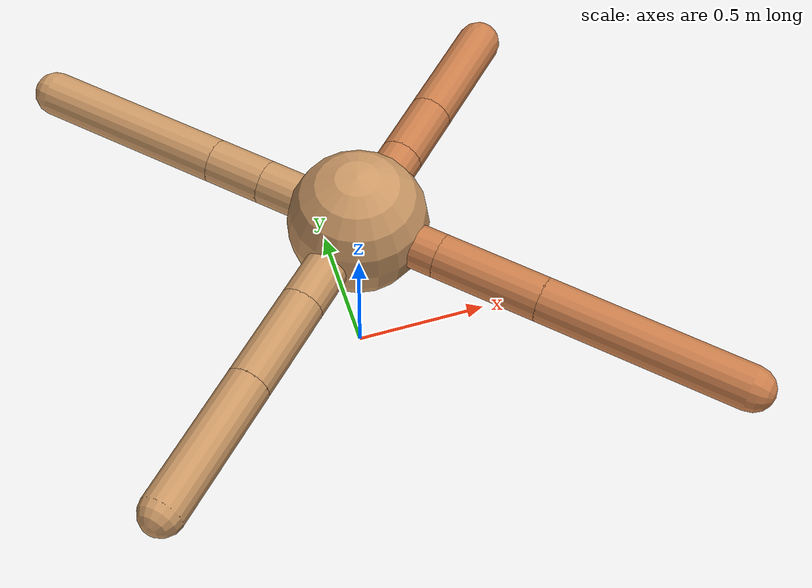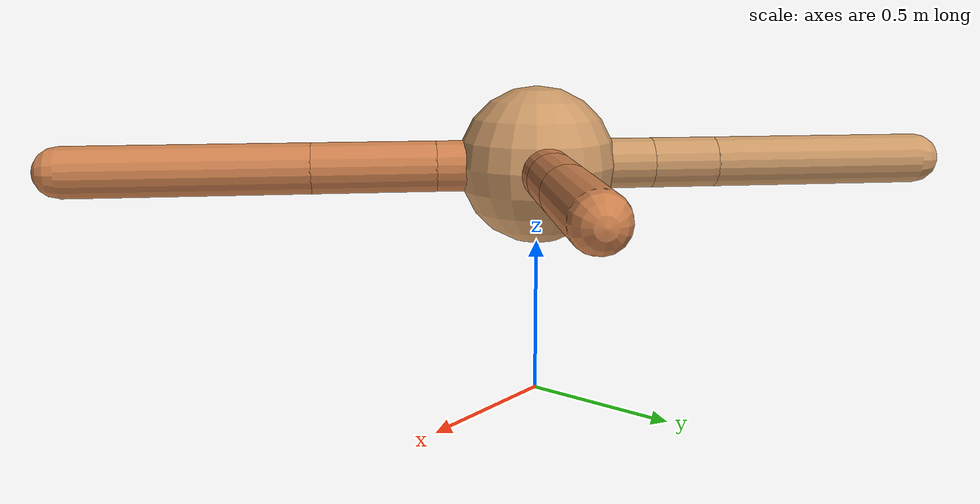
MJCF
<mujoco model="ant">
  <compiler angle="degree" coordinate="local" inertiafromgeom="true" />
  <option integrator="RK4" timestep="0.01" />
  <custom>
    <numeric data="0.0 0.0 0.55 1.0 0.0 0.0 0.0 0.0 1.0 0.0 -1.0 0.0 -1.0 0.0 1.0" name="init_qpos" />
  </custom>
  <default>
    <joint armature="1" damping="1" limited="true" />
    <geom conaffinity="0" condim="3" density="5.0" friction="1.5 0.1 0.1" margin="0.01" rgba="0.8 0.6 0.4 1" />
  </default>
  <worldbody>
    <body name="torso" pos="0 0 0.75">
      <geom name="torso_geom" pos="0 0 0" size="0.25" type="sphere" />

      <body name="front_left_leg" pos="0 0 0">
        <geom fromto="0.0 0.0 0.0 0.23047154387384994 0.23047154387384994 0.0" name="aux_1_geom" size="0.08" type="capsule" rgba=".8 .5 .3 1" />
        <body name="aux_1" pos="0.23047154387384994 0.23047154387384994 0.0">
          <joint axis="0 0 1" name="hip_1" pos="0.0 0.0 0.0" range="-40 40" type="hinge" />
          <geom fromto="0.0 0.0 0.0 0.16344955321893134 0.16344955321893134 0.0" name="left_leg_geom" size="0.08" type="capsule" rgba=".8 .5 .3 1" />
          <body pos="0.16344955321893134 0.16344955321893134 0.0" name="front_left_foot">
            <joint axis="-1 1 0" name="ankle_1" pos="0.0 0.0 0.0" range="30 100" type="hinge" />
            <geom fromto="0.0 0.0 0.0 0.284244225673962 0.284244225673962 0.0" name="left_ankle_geom" size="0.08" type="capsule" rgba=".8 .5 .3 1" />
          </body>
        </body>
      </body>
      <body name="front_right_leg" pos="0 0 0">
        <geom fromto="0.0 0.0 0.0 -0.2630137817942202 0.2630137817942202 0.0" name="aux_2_geom" size="0.08" type="capsule" />
        <body name="aux_2" pos="-0.2630137817942202 0.2630137817942202 0.0">
          <joint axis="0 0 1" name="hip_2" pos="0.0 0.0 0.0" range="-40 40" type="hinge" />
          <geom fromto="0.0 0.0 0.0 -0.14689311745185524 0.14689311745185524 0.0" name="right_leg_geom" size="0.08" type="capsule" />
          <body pos="-0.14689311745185524 0.14689311745185524 0.0" name="front_right_foot">
            <joint axis="1 1 0" name="ankle_2" pos="0.0 0.0 0.0" range="-100 -30" type="hinge" />
            <geom fromto="0.0 0.0 0.0 -0.4863746071830308 0.4863746071830308 0.0" name="right_ankle_geom" size="0.08" type="capsule" />
          </body>
        </body>
      </body>
      <body name="left_back_leg" pos="0 0 0">
        <geom fromto="0.0 0.0 0.0 -0.281794823084483 -0.281794823084483 0.0" name="aux_3_geom" size="0.08" type="capsule" />
        <body name="aux_3" pos="-0.281794823084483 -0.281794823084483 0.0">
          <joint axis="0 0 1" name="hip_3" pos="0.0 0.0 0.0" range="-40 40" type="hinge" />
          <geom fromto="0.0 0.0 0.0 -0.25008343913018294 -0.25008343913018294 0.0" name="back_leg_geom" size="0.08" type="capsule" />
          <body pos="-0.25008343913018294 -0.25008343913018294 0.0" name="left_back_foot">
            <joint axis="-1 1 0" name="ankle_3" pos="0.0 0.0 0.0" range="-100 -30" type="hinge" />
            <geom fromto="0.0 0.0 0.0 -0.3719346360390381 -0.3719346360390381 0.0" name="third_ankle_geom" size="0.08" type="capsule" />
          </body>
        </body>
      </body>
      <body name="right_back_leg" pos="0 0 0">
        <geom fromto="0.0 0.0 0.0 0.22717835518870252 -0.22717835518870252 0.0" name="aux_4_geom" size="0.08" type="capsule" rgba=".8 .5 .3 1" />
        <body name="aux_4" pos="0.22717835518870252 -0.22717835518870252 0.0">
          <joint axis="0 0 1" name="hip_4" pos="0.0 0.0 0.0" range="-40 40" type="hinge" />
          <geom fromto="0.0 0.0 0.0 0.2733715969831031 -0.2733715969831031 0.0" name="rightback_leg_geom" size="0.08" type="capsule" rgba=".8 .5 .3 1" />
          <body pos="0.2733715969831031 -0.2733715969831031 0.0" name="right_back_foot">
            <joint axis="1 1 0" name="ankle_4" pos="0.0 0.0 0.0" range="30 100" type="hinge" />
            <geom fromto="0.0 0.0 0.0 0.5311821441300272 -0.5311821441300272 0.0" name="fourth_ankle_geom" size="0.08" type="capsule" rgba=".8 .5 .3 1" />
          </body>
        </body>
      </body>
    </body>
  </worldbody>
  <actuator>
    <motor ctrllimited="true" ctrlrange="-1.0 1.0" joint="hip_4" gear="150" />
    <motor ctrllimited="true" ctrlrange="-1.0 1.0" joint="ankle_4" gear="150" />
    <motor ctrllimited="true" ctrlrange="-1.0 1.0" joint="hip_1" gear="150" />
    <motor ctrllimited="true" ctrlrange="-1.0 1.0" joint="ankle_1" gear="150" />
    <motor ctrllimited="true" ctrlrange="-1.0 1.0" joint="hip_2" gear="150" />
    <motor ctrllimited="true" ctrlrange="-1.0 1.0" joint="ankle_2" gear="150" />
    <motor ctrllimited="true" ctrlrange="-1.0 1.0" joint="hip_3" gear="150" />
    <motor ctrllimited="true" ctrlrange="-1.0 1.0" joint="ankle_3" gear="150" />
  </actuator>
</mujoco>
